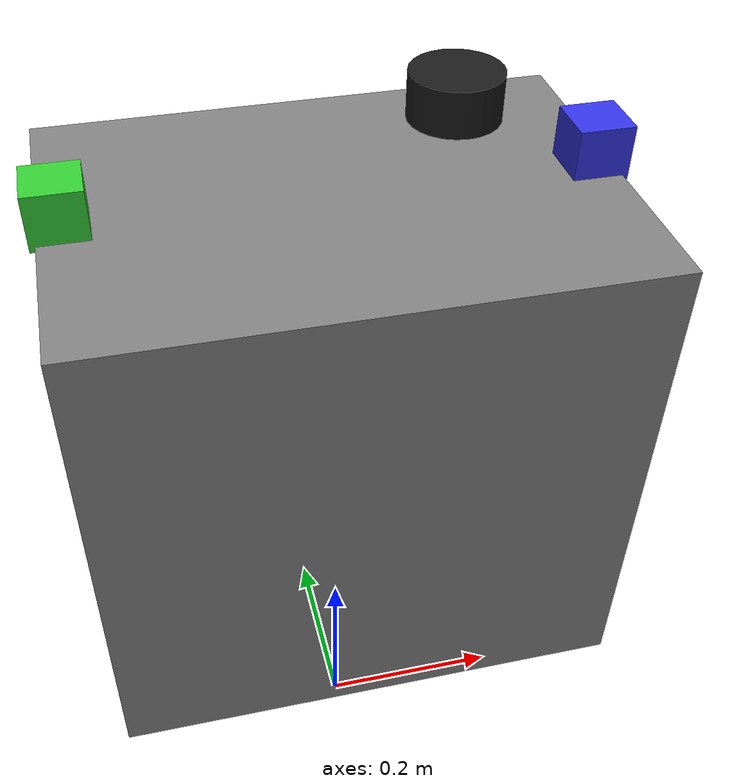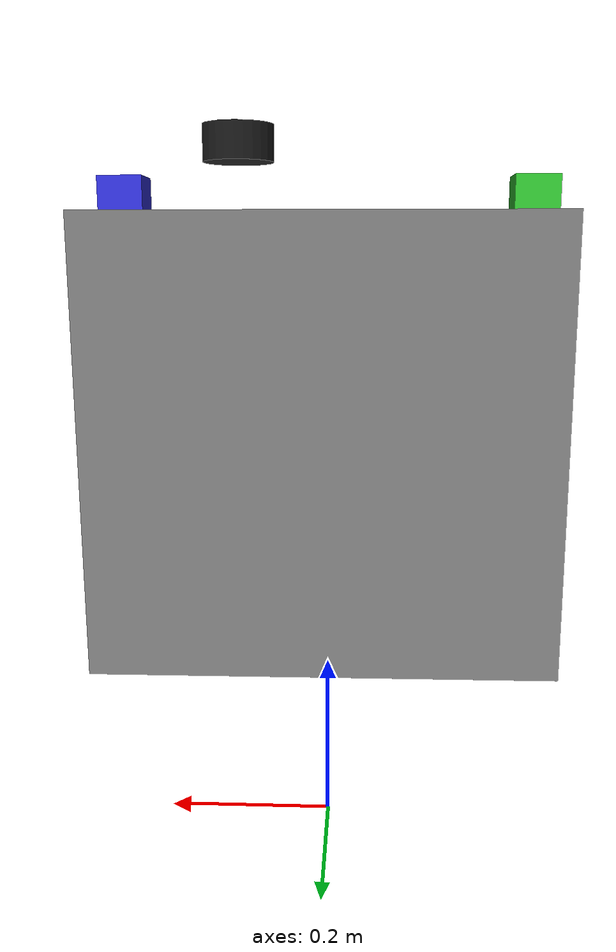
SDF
<?xml version="1.0"?>
<sdf version="1.9">
  <model name="smart_agent">
    <pose>0 0 0.25 0 0 0</pose>
    <static>false</static>
    <plugin
      filename="libignition-gazebo-velocity-control-system.so"
      name="ignition::gazebo::systems::VelocityControl">
      <topic>/model/smart_agent/cmd_vel</topic>
    </plugin>

    <link name="base_link">
      <inertial>
        <mass>8.0</mass>
        <inertia>
          <ixx>0.28</ixx>
          <iyy>0.28</iyy>
          <izz>0.45</izz>
          <ixy>0.0</ixy>
          <ixz>0.0</ixz>
          <iyz>0.0</iyz>
        </inertia>
      </inertial>
      <collision name="collision">
        <pose>0 0 0.24 0 0 0</pose>
        <geometry>
          <box>
            <size>0.5 0.35 0.48</size>
          </box>
        </geometry>
      </collision>
      <visual name="visual">
        <pose>0 0 0.24 0 0 0</pose>
        <geometry>
          <box>
            <size>0.5 0.35 0.48</size>
          </box>
        </geometry>
        <material>
          <ambient>0.5 0.5 0.5 1</ambient>
          <diffuse>0.5 0.5 0.5 1</diffuse>
        </material>
      </visual>
      <sensor name="imu_sensor" type="imu">
        <topic>/agent/imu</topic>
        <update_rate>100</update_rate>
        <always_on>true</always_on>
        <visualize>false</visualize>
        <gz_frame_id>base_link</gz_frame_id>
      </sensor>
    </link>

    <link name="lidar_link">
      <pose>0.10 0 0.56 0 0 0</pose>
      <sensor name="lidar_sensor" type="gpu_lidar">
        <topic>/agent/lidar/scan</topic>
        <update_rate>10</update_rate>
        <always_on>true</always_on>
        <visualize>true</visualize>
        <gz_frame_id>lidar_link</gz_frame_id>
        <ray>
          <scan>
            <horizontal>
              <samples>1824</samples>
              <resolution>1</resolution>
              <min_angle>-3.14159</min_angle>
              <max_angle>3.14159</max_angle>
            </horizontal>
            <vertical>
              <samples>16</samples>
              <resolution>1</resolution>
              <min_angle>-0.261799</min_angle>
              <max_angle>0.261799</max_angle>
            </vertical>
          </scan>
          <range>
            <min>0.12</min>
            <max>15.0</max>
            <resolution>0.01</resolution>
          </range>
          <noise>
            <type>gaussian</type>
            <mean>0.0</mean>
            <stddev>0.005</stddev>
          </noise>
        </ray>
      </sensor>
      <visual name="visual">
        <geometry>
          <cylinder>
            <radius>0.04</radius>
            <length>0.04</length>
          </cylinder>
        </geometry>
        <material>
          <ambient>0.1 0.1 0.1 1</ambient>
          <diffuse>0.1 0.1 0.1 1</diffuse>
        </material>
      </visual>
    </link>
    <joint name="lidar_joint" type="fixed">
      <parent>base_link</parent>
      <child>lidar_link</child>
    </joint>

    <link name="front_camera_link">
      <pose>0.23 0 0.50 0 0 0</pose>
      <sensor name="front_camera_sensor" type="camera">
        <topic>/agent/front_camera/image</topic>
        <update_rate>20</update_rate>
        <always_on>true</always_on>
        <gz_frame_id>front_camera_link</gz_frame_id>
        <camera>
          <horizontal_fov>1.396</horizontal_fov>
          <image>
            <width>640</width>
            <height>480</height>
            <format>R8G8B8</format>
          </image>
          <clip>
            <near>0.05</near>
            <far>50.0</far>
          </clip>
        </camera>
      </sensor>
      <visual name="visual">
        <geometry><box><size>0.05 0.05 0.05</size></box></geometry>
        <material><ambient>0.2 0.2 0.9 1</ambient><diffuse>0.2 0.2 0.9 1</diffuse></material>
      </visual>
    </link>
    <joint name="front_camera_joint" type="fixed">
      <parent>base_link</parent>
      <child>front_camera_link</child>
    </joint>

    <link name="rear_camera_link">
      <pose>-0.23 0 0.50 0 0 3.14159</pose>
      <sensor name="rear_camera_sensor" type="camera">
        <topic>/agent/rear_camera/image</topic>
        <update_rate>20</update_rate>
        <always_on>true</always_on>
        <gz_frame_id>rear_camera_link</gz_frame_id>
        <camera>
          <horizontal_fov>1.396</horizontal_fov>
          <image>
            <width>640</width>
            <height>480</height>
            <format>R8G8B8</format>
          </image>
          <clip>
            <near>0.05</near>
            <far>50.0</far>
          </clip>
        </camera>
      </sensor>
      <visual name="visual">
        <geometry><box><size>0.05 0.05 0.05</size></box></geometry>
        <material><ambient>0.2 0.8 0.2 1</ambient><diffuse>0.2 0.8 0.2 1</diffuse></material>
      </visual>
    </link>
    <joint name="rear_camera_joint" type="fixed">
      <parent>base_link</parent>
      <child>rear_camera_link</child>
    </joint>

    <link name="depth_camera_link">
      <pose>0.23 0 0.50 0 0 0</pose>
      <sensor name="depth_camera_sensor" type="depth_camera">
        <topic>/agent/depth_camera/image</topic>
        <update_rate>15</update_rate>
        <always_on>true</always_on>
        <gz_frame_id>depth_camera_link</gz_frame_id>
        <camera>
          <horizontal_fov>1.396</horizontal_fov>
          <image>
            <width>640</width>
            <height>480</height>
            <format>R8G8B8</format>
          </image>
          <clip>
            <near>0.1</near>
            <far>20.0</far>
          </clip>
        </camera>
      </sensor>
      <visual name="visual">
        <geometry><box><size>0.05 0.05 0.05</size></box></geometry>
        <material><ambient>0.9 0.4 0.1 1</ambient><diffuse>0.9 0.4 0.1 1</diffuse></material>
      </visual>
    </link>
    <joint name="depth_camera_joint" type="fixed">
      <parent>base_link</parent>
      <child>depth_camera_link</child>
    </joint>
  </model>
</sdf>
